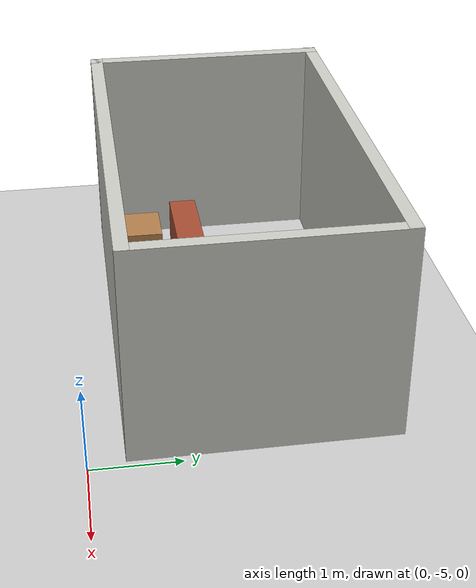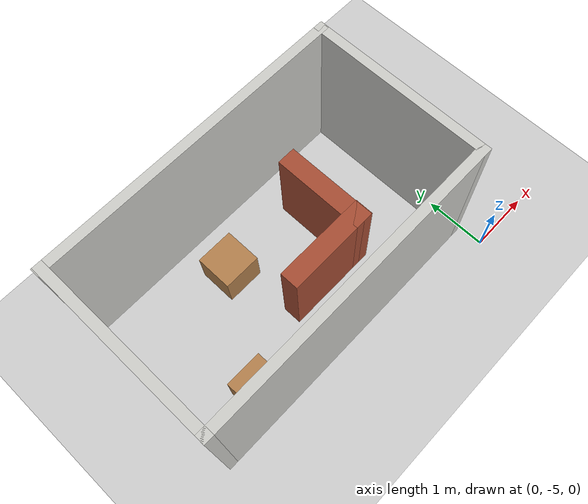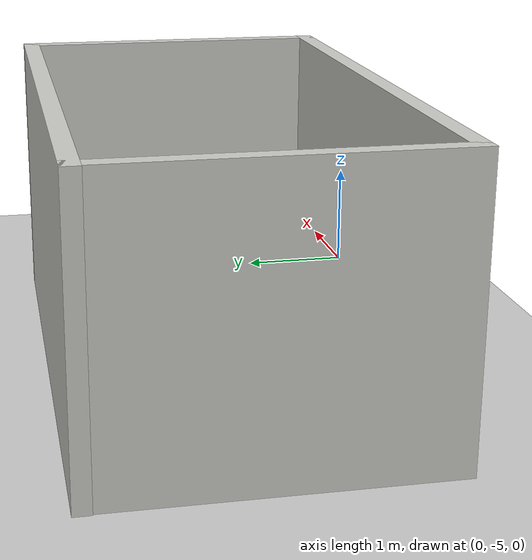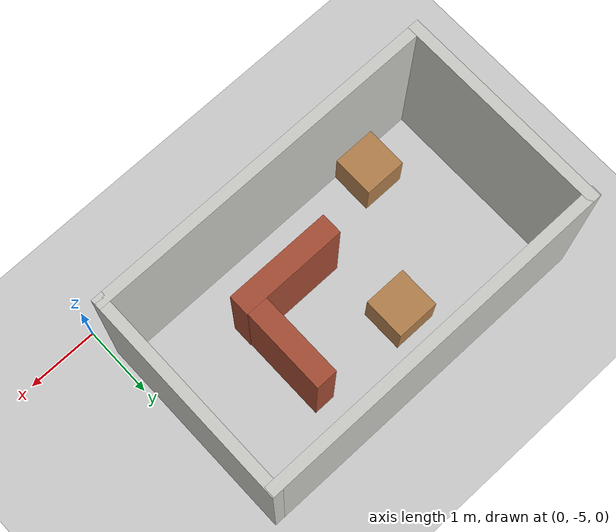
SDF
<sdf version="1.6">
 <world name="default">
  <light name="sun" type="directional">
   <pose>0 0 10 0 -0 0</pose>
   <diffuse>0.8 0.8 0.8 1</diffuse>
   <specular>0.2 0.2 0.2 1</specular>
   <attenuation>
    <range>1000</range>
    <constant>0.9</constant>
    <linear>0.01</linear>
    <quadratic>0.001</quadratic>
   </attenuation>
   <direction>-0.5 0.1 -0.9</direction>
  </light>
  <model name="ground_plane">
   <static>1</static>
   <link name="link">
    <collision name="collision">
     <geometry><plane><normal>0 0 1</normal><size>100 100</size></plane></geometry>
     <surface><friction><ode><mu>100</mu><mu2>50</mu2></ode></friction></surface>
    </collision>
    <visual name="visual">
     <cast_shadows>0</cast_shadows>
     <geometry><plane><normal>0 0 1</normal><size>100 100</size></plane></geometry>
     <material>
      <script><uri>file://media/materials/scripts/gazebo.material</uri><name>Gazebo/Grey</name></script>
     </material>
    </visual>
   </link>
  </model>
  <gravity>0 0 -9.8</gravity>
  <magnetic_field>6e-06 2.3e-05 -4.2e-05</magnetic_field>
  <atmosphere type="adiabatic"/>
  <physics name="default_physics" default="0" type="ode">
   <max_step_size>0.001</max_step_size>
   <real_time_factor>1</real_time_factor>
   <real_time_update_rate>1000</real_time_update_rate>
  </physics>
  <scene><ambient>0.4 0.4 0.4 1</ambient><background>0.7 0.7 0.7 1</background><shadows>1</shadows></scene>
  <spherical_coordinates>
   <surface_model>EARTH_WGS84</surface_model>
   <latitude_deg>0</latitude_deg>
   <longitude_deg>0</longitude_deg>
   <elevation>0</elevation>
   <heading_deg>0</heading_deg>
  </spherical_coordinates>
  <model name="env8">
   <pose>-2.58484 -3.11806 0 0 -0 0</pose>
   <link name="Wall_0">
    <collision name="Wall_0_Collision">
     <geometry><box><size>2.96033 0.15 2.5</size></box></geometry>
     <pose>0 0 1.25 0 -0 0</pose>
    </collision>
    <visual name="Wall_0_Visual">
     <pose>0 0 1.25 0 -0 0</pose>
     <geometry><box><size>2.96033 0.15 2.5</size></box></geometry>
     <material>
      <script><uri>file://media/materials/scripts/gazebo.material</uri><name>Gazebo/CeilingTiled</name></script>
      <ambient>0.760784 0.662745 0.627451 1</ambient>
     </material>
     <meta><layer>0</layer></meta>
    </visual>
    <pose>-2.41839 0 0 0 0 -1.5708</pose>
   </link>
   <link name="Wall_1">
    <collision name="Wall_1_Collision">
     <geometry><box><size>5 0.15 2.5</size></box></geometry>
     <pose>0 0 1.25 0 -0 0</pose>
    </collision>
    <visual name="Wall_1_Visual">
     <pose>0 0 1.25 0 -0 0</pose>
     <geometry><box><size>5 0.15 2.5</size></box></geometry>
     <material>
      <script><uri>file://media/materials/scripts/gazebo.material</uri><name>Gazebo/CeilingTiled</name></script>
      <ambient>0.760784 0.662745 0.627451 1</ambient>
     </material>
     <meta><layer>0</layer></meta>
    </visual>
    <pose>0.006612 -1.40516 0 0 -0 0</pose>
   </link>
   <link name="Wall_10">
    <collision name="Wall_10_Collision">
     <geometry><box><size>1.5 0.3 1.5</size></box></geometry>
     <pose>0 0 0.75 0 -0 0</pose>
    </collision>
    <visual name="Wall_10_Visual">
     <pose>0 0 0.75 0 -0 0</pose>
     <geometry><box><size>1.5 0.3 1.5</size></box></geometry>
     <material>
      <script><uri>file://media/materials/scripts/gazebo.material</uri><name>Gazebo/Bricks</name></script>
      <ambient>1 1 1 1</ambient>
     </material>
     <meta><layer>0</layer></meta>
    </visual>
    <pose>0.453011 -0.557155 0 0 -0 0</pose>
   </link>
   <link name="Wall_11">
    <collision name="Wall_11_Collision">
     <geometry><box><size>1.5 0.3 1.5</size></box></geometry>
     <pose>0 0 0.75 0 -0 0</pose>
    </collision>
    <visual name="Wall_11_Visual">
     <pose>0 0 0.75 0 -0 0</pose>
     <geometry><box><size>1.5 0.3 1.5</size></box></geometry>
     <material>
      <script><uri>file://media/materials/scripts/gazebo.material</uri><name>Gazebo/Bricks</name></script>
      <ambient>1 1 1 1</ambient>
     </material>
     <meta><layer>0</layer></meta>
    </visual>
    <pose>1.04432 0.042845 0 0 -0 1.5708</pose>
   </link>
   <link name="Wall_2">
    <collision name="Wall_2_Collision">
     <geometry><box><size>2.96033 0.15 2.5</size></box></geometry>
     <pose>0 0 1.25 0 -0 0</pose>
    </collision>
    <visual name="Wall_2_Visual">
     <pose>0 0 1.25 0 -0 0</pose>
     <geometry><box><size>2.96033 0.15 2.5</size></box></geometry>
     <material>
      <script><uri>file://media/materials/scripts/gazebo.material</uri><name>Gazebo/CeilingTiled</name></script>
      <ambient>0.760784 0.662745 0.627451 1</ambient>
     </material>
     <meta><layer>0</layer></meta>
    </visual>
    <pose>2.43161 0 0 0 -0 1.5708</pose>
   </link>
   <link name="Wall_3">
    <collision name="Wall_3_Collision">
     <geometry><box><size>5 0.15 2.5</size></box></geometry>
     <pose>0 0 1.25 0 -0 0</pose>
    </collision>
    <visual name="Wall_3_Visual">
     <pose>0 0 1.25 0 -0 0</pose>
     <geometry><box><size>5 0.15 2.5</size></box></geometry>
     <material>
      <script><uri>file://media/materials/scripts/gazebo.material</uri><name>Gazebo/CeilingTiled</name></script>
      <ambient>0.760784 0.662745 0.627451 1</ambient>
     </material>
     <meta><layer>0</layer></meta>
    </visual>
    <pose>-0.006613 1.40516 0 0 -0 3.14159</pose>
   </link>
   <link name="Wall_5">
    <collision name="Wall_5_Collision">
     <geometry><box><size>0.61 0.6 0.6</size></box></geometry>
     <pose>0 0 0.3 0 -0 0</pose>
    </collision>
    <visual name="Wall_5_Visual">
     <pose>0 0 0.3 0 -0 0</pose>
     <geometry><box><size>0.61 0.6 0.6</size></box></geometry>
     <material>
      <script><uri>file://media/materials/scripts/gazebo.material</uri><name>Gazebo/Wood</name></script>
      <ambient>1 1 1 1</ambient>
     </material>
     <meta><layer>0</layer></meta>
    </visual>
    <pose>-0.441144 0.583523 0 0 -0 3.14159</pose>
   </link>
   <link name="Wall_7">
    <collision name="Wall_7_Collision">
     <geometry><box><size>0.61 0.6 0.6</size></box></geometry>
     <pose>0 0 0.3 0 -0 0</pose>
    </collision>
    <visual name="Wall_7_Visual">
     <pose>0 0 0.3 0 -0 0</pose>
     <geometry><box><size>0.61 0.6 0.6</size></box></geometry>
     <material>
      <script><uri>file://media/materials/scripts/gazebo.material</uri><name>Gazebo/Wood</name></script>
      <ambient>1 1 1 1</ambient>
     </material>
     <meta><layer>0</layer></meta>
    </visual>
    <pose>-1.43716 -1.04194 0 0 -0 1.5708</pose>
   </link>
   <static>1</static>
  </model>
 </world>
</sdf>
